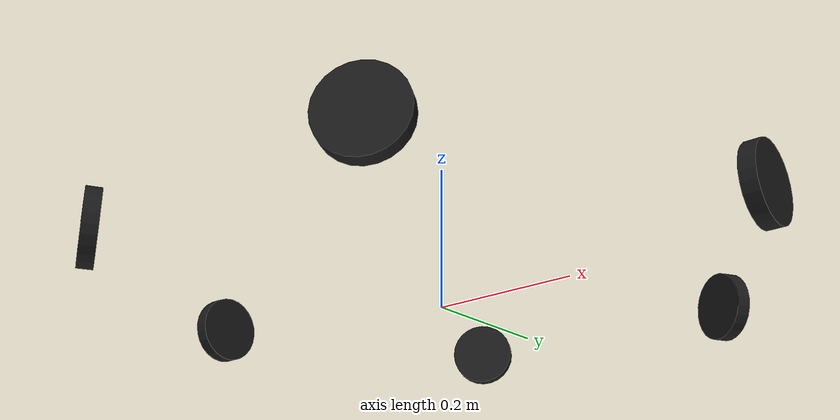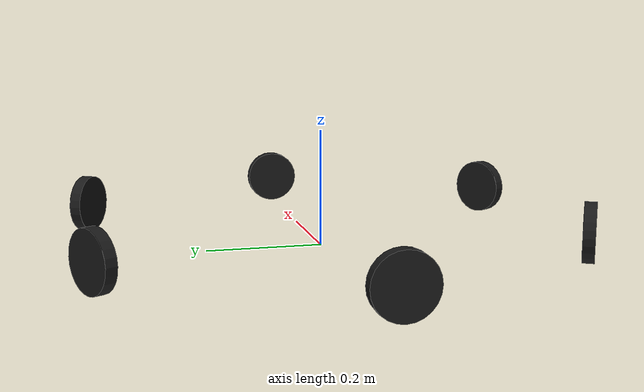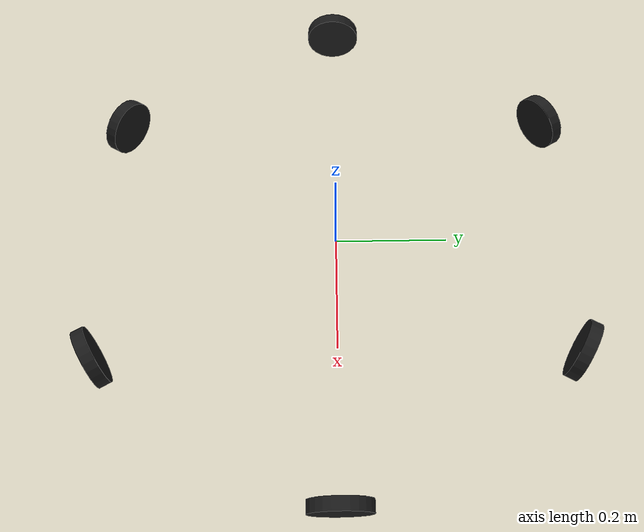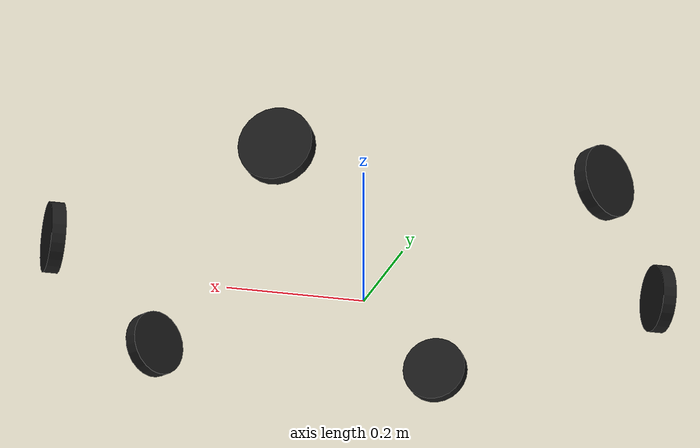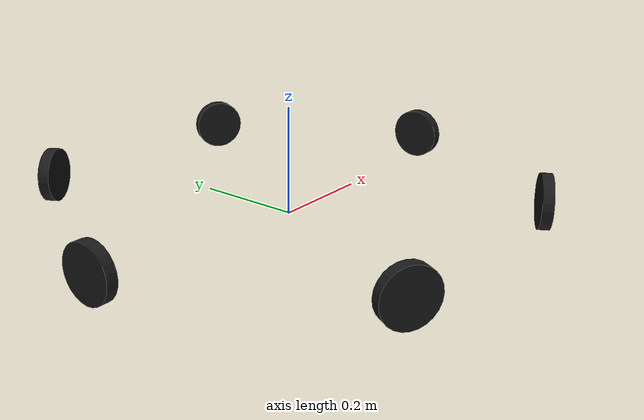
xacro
<?xml version="1.0"?>
<robot name="omni_robot" xmlns:xacro="http://ros.org/wiki/xacro">

  <!-- Parameters           -->
  <xacro:property name="wheel_radius" value="0.05"/>
  <xacro:property name="wheel_width"  value="0.02"/>
  <xacro:property name="color_alpha" value="1.0"/>

  <!-- Base link             -->
  <link name="base_link"/>

  <!-- Wheel module macro    -->
  <xacro:macro name="omni" params="wheel_name x y angle">

    <!-- wheel base link -->
    <link name="${wheel_name}_base_link"/>

    <!-- wheel base joint -->
    <joint name="${wheel_name}_base" type="fixed">
      <parent link="base_link"/>
      <child link="${wheel_name}_base_link"/>
      <origin xyz="${x} ${y} ${wheel_radius}" rpy="0 0 ${angle}"/>
      <axis xyz="0 0 1"/>
    </joint>

    <!-- wheel link -->
    <link name="${wheel_name}_link">
      <visual>
        <geometry>
          <cylinder radius="${wheel_radius}" length="${wheel_width}"/>
        </geometry>
        <origin rpy="1.5708 0 0"/>
        <material name="black">
          <color rgba="0.1 0.1 0.1 ${color_alpha}"/>
        </material>
      </visual>
    </link>

    <!-- wheel joint -->
    <joint name="${wheel_name}" type="continuous">
      <parent link="${wheel_name}_base_link"/>
      <child link="${wheel_name}_link"/>
      <axis xyz="0 1 0"/>
    </joint>

  </xacro:macro>

  <!-- Omni instances       -->

  <xacro:omni wheel_name="omni_wheel_0" x="0.45"   y="0.0"    angle="1.5707963268"/>
  <xacro:omni wheel_name="omni_wheel_1" x="0.225"  y="0.3897" angle="2.6179938780"/>
  <xacro:omni wheel_name="omni_wheel_2" x="-0.225" y="0.3897" angle="-2.6179938780"/>
  <xacro:omni wheel_name="omni_wheel_3" x="-0.45"  y="0.0"    angle="-1.5707963268"/>
  <xacro:omni wheel_name="omni_wheel_4" x="-0.225" y="-0.3897" angle="-0.5235987756"/>
  <xacro:omni wheel_name="omni_wheel_5" x="0.225"  y="-0.3897" angle="0.5235987756"/>

  <!-- Lidar Front          -->
  <link name="lidar_front"/>
  <joint name="base_to_lidar_front" type="fixed">
    <parent link="base_link"/>
    <child link="lidar_front"/>
    <origin xyz="0.4 0 0" rpy="0 0 0"/>
  </joint>

  <!-- Lidar Rear           -->
  <link name="lidar_rear"/>
  <joint name="base_to_lidar_rear" type="fixed">
    <parent link="base_link"/>
    <child link="lidar_rear"/>
    <origin xyz="-0.4 0 0" rpy="0 0 3.1415926535"/> <!-- rpy = 0 0 pi -->
  </joint>
</robot>
